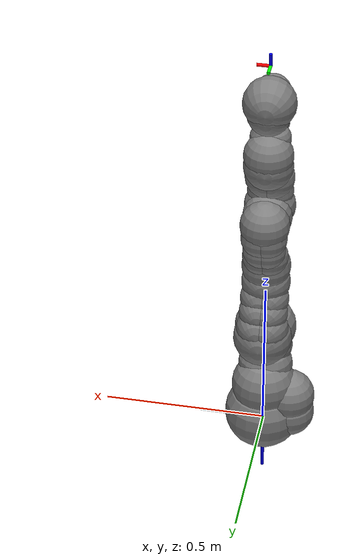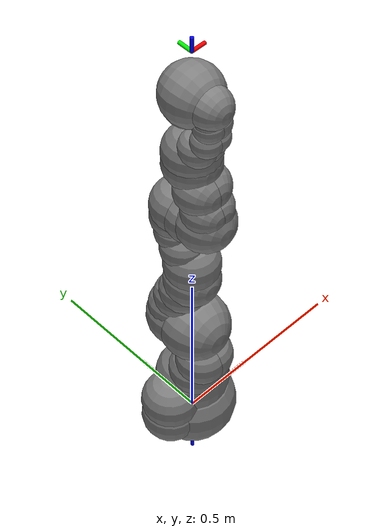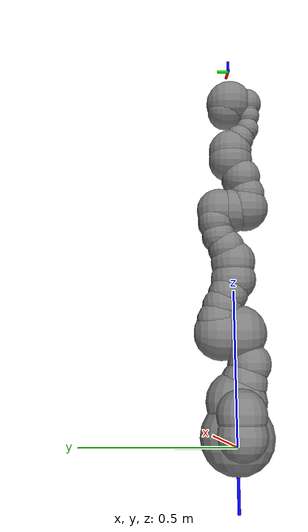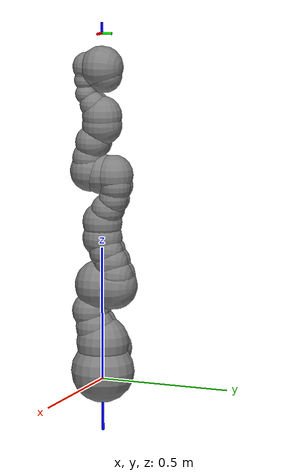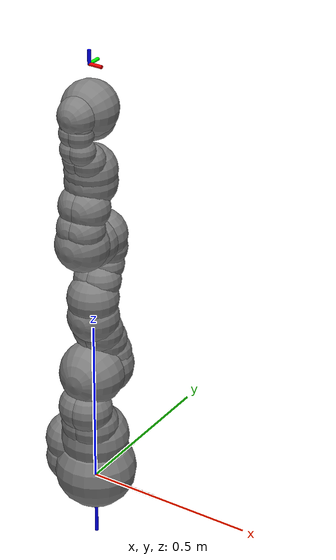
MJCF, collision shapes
<mujoco model="iiwa14">
    <option timestep="0.001"  tolerance="1e-10" solver="Newton" jacobian="dense" cone="pyramidal" gravity="0 0 -9.81">
        <flag contact="enable" energy="enable"/>
    </option>

    <compiler angle="radian" meshdir="meshes/iiwa14/visual/" />
    <size njmax="500" nconmax="100" />
    <option integrator="implicitfast"/>
    <default>
    <default class="iiwa">
        <material specular="0.5" shininess="0.25"/>
        <joint axis="0 0 1"/>
        <general gaintype="fixed" biastype="affine" gainprm="3000" biasprm="0 -3000 -300"/>
        <default class="joint1">
        <joint range="-2.96706 2.96706"/>
        <general ctrlrange="-2.96706 2.96706"/>
        <default class="joint2">
            <joint range="-2.0944 2.0944"/>
            <general ctrlrange="-2.0944 2.0944"/>
        </default>
        </default>
        <default class="joint3">
        <joint range="-3.05433 3.05433"/>
        <general ctrlrange="-3.05433 3.05433"/>
        </default>
        <default class="visual">
        <geom type="mesh" contype="0" conaffinity="0" group="2" material="gray"/>
        </default>
        <default class="collision">
        <geom group="3"/>
        </default>
        <site size="0.001" rgba="1 0 0 1" group="4"/>
    </default>
    </default>
    <asset>
        <material class="iiwa" name="gray" rgba="0.4 0.4 0.4 1"/>
        <material class="iiwa" name="light_gray" rgba="0.6 0.6 0.6 1"/>
        <material class="iiwa" name="black" rgba="0 0 0 1"/>
        <material class="iiwa" name="orange" rgba="1 0.423529 0.0392157 1"/>

        <mesh name="link_0_c" file="link_0.obj"/>
        <mesh name="link_1_c" file="link_1.obj"/>
        <mesh name="link_2_orange" file="link_2_orange.obj"/>
        <mesh name="link_2_grey" file="link_2_grey.obj"/>
        <mesh name="link_3_c" file="link_3.obj"/>
        <mesh name="band" file="band.obj"/>
        <mesh name="kuka" file="kuka.obj"/>
        <mesh name="link_4_orange" file="link_4_orange.obj"/>
        <mesh name="link_4_grey" file="link_4_grey.obj"/>
        <mesh name="link_5_c" file="link_5.obj"/>
        <mesh name="link_6_orange" file="link_6_orange.obj"/>
        <mesh name="link_6_grey" file="link_6_grey.obj"/>
        <mesh name="link_7_c" file="link_7.obj"/>

        <mesh name="link_0" file="link_0.stl" />
        <mesh name="link_1" file="link_1.stl" />
        <mesh name="link_2" file="link_2.stl" />
        <mesh name="link_3" file="link_3.stl" />
        <mesh name="link_4" file="link_4.stl" />
        <mesh name="link_5" file="link_5.stl" />
        <mesh name="link_6" file="link_6.stl" />
        <mesh name="link_7" file="link_7.stl" />
    </asset>
    <worldbody>
        <body name="base">
        <!-- color frame -->
        <geom type="cylinder" size="0.005 0.1" rgba="1 0 0 1" pos="0.1 0 0" euler="0 -1.57  0" />
        <geom type="cylinder" size="0.005 0.1" rgba="0 1 0 1" pos="0 0.1 0" euler="-1.57 0 0" />
        <geom type="cylinder" size="0.005 0.2" rgba="0 0 1 1" pos="0 0 0" euler="0 0 0" />
        <inertial pos="-0.1 0 0.07"  mass="5" diaginertia="0.05 0.06 0.03"/>
        <geom class="visual" mesh="link_0_c"/>
        <geom class="collision" size="0.12" pos="0 0 0.03"/>
        <geom class="collision" size="0.08" pos="-0.08 0 0.103"/>
        <geom class="collision" size="0.08" pos="-0.08 0 0.04"/>
        <geom class="collision" size="0.1" pos="0 0 0.14"/>
        <body name="link1" pos="0 0 0.1575">
            <inertial pos="0 -0.03 0.12" mass="4" diaginertia="0.1 0.09 0.02"/>
            <joint name="joint1" pos="0 0 0" axis="0 0 1" range="-2.96706 2.96706" actuatorfrcrange="-300 300" damping="0.5"/>
            <!-- add -->
            <geom class="visual" mesh="link_1_c"/>
            <geom class="collision" size="0.08" pos="0 0 -0.0005"/>
            <geom class="collision" size="0.075" pos="0.01 -0.025 0.0425"/>
            <geom class="collision" size="0.075" pos="-0.01 -0.025 0.0425"/>
            <geom class="collision" size="0.07" pos="0.01 -0.045 0.1025"/>
            <geom class="collision" size="0.07" pos="-0.01 -0.045 0.1025"/>
            <body name="link2" pos="0 0 0.2025" quat="0 0 0.707107 0.707107">
            <inertial pos="0.0003 0.059 0.042" quat="0.707107 0.707107 0 0" mass="4" diaginertia="0.05 0.044 0.018"/>
            <joint name="joint2" pos="0 0 0" axis="0 0 1" range="-2.0944 2.0944" actuatorfrcrange="-300 300" damping="0.5"/>
            <!-- add -->
            <geom class="visual" material="orange" mesh="link_2_orange"/>
            <geom class="visual" mesh="link_2_grey"/>
            <geom class="collision" size="0.095" pos="0 0 -0.01"/>
            <geom class="collision" size="0.09" pos="0 0 0.045"/>
            <geom class="collision" size="0.07" pos="-0.01 0.04 0.054"/>
            <geom class="collision" size="0.065" pos="-0.01 0.09 0.04"/>
            <geom class="collision" size="0.065" pos="-0.01 0.13 0.02"/>
            <geom class="collision" size="0.07" pos="0.01 0.04 0.054"/>
            <geom class="collision" size="0.065" pos="0.01 0.09 0.04"/>
            <geom class="collision" size="0.065" pos="0.01 0.13 0.02"/>
            <geom class="collision" size="0.075" pos="0 0.18 0"/>
            <body name="link3" pos="0 0.2045 0" quat="0 0 0.707107 0.707107">
                <inertial pos="0 0.03 0.13" mass="3" diaginertia="0.08 0.075 0.01"/>
                <joint name="joint3" pos="0 0 0" axis="0 0 1" range="-2.96706 2.96706" actuatorfrcrange="-300 300" damping="0.5"/>
                <!-- add -->
                <geom class="visual" mesh="link_3_c"/>
                <geom class="visual" material="light_gray" mesh="band"/>
                <geom class="visual" material="black" mesh="kuka"/>
                <geom class="collision" size="0.075" pos="0 0 0.0355"/>
                <geom class="collision" size="0.06" pos="0.01 0.023 0.0855"/>
                <geom class="collision" size="0.055" pos="0.01 0.048 0.1255"/>
                <geom class="collision" size="0.06" pos="0.01 0.056 0.1755"/>
                <geom class="collision" size="0.06" pos="-0.01 0.023 0.0855"/>
                <geom class="collision" size="0.055" pos="-0.01 0.048 0.1255"/>
                <geom class="collision" size="0.06" pos="-0.01 0.056 0.1755"/>
                <geom class="collision" size="0.075" pos="0 0.045 0.2155"/>
                <geom class="collision" size="0.075" pos="0 0 0.2155"/>
                <body name="link4" pos="0 0 0.2155" quat="0.707107 0.707107 0 0">
                <inertial pos="0 0.067 0.034" quat="0.707107 0.707107 0 0" mass="2.7" diaginertia="0.03 0.029 0.01"/>
                <joint name="joint4" pos="0 0 0" axis="0 0 1" range="-2.0944 2.0944" actuatorfrcrange="-300 300" damping="0.5"/>
                <!-- add -->
                <geom class="visual" material="orange" mesh="link_4_orange"/>
                <geom class="visual" mesh="link_4_grey"/>
                <geom class="collision" size="0.078" pos="0 0.01 0.046"/>
                <geom class="collision" size="0.06" pos="0.01 0.06 0.052"/>
                <geom class="collision" size="0.065" pos="0.01 0.12 0.034"/>
                <geom class="collision" size="0.06" pos="-0.01 0.06 0.052"/>
                <geom class="collision" size="0.065" pos="-0.01 0.12 0.034"/>
                <geom class="collision" size="0.075" pos="0 0.184 0"/>
                <body name="link5" pos="0 0.1845 0" quat="0 0 0.707107 0.707107">
                    <inertial pos="0.0001 0.021 0.076" mass="1.7" diaginertia="0.02 0.018 0.005"/>
                    <joint name="joint5" pos="0 0 0" axis="0 0 1" range="-2.96706 2.96706" actuatorfrcrange="-300 300" damping="0.5"/>
                    <!-- add -->
                    <geom class="visual" mesh="link_5_c"/>
                    <geom class="visual" material="light_gray" mesh="band"/>
                    <geom class="visual" material="black" mesh="kuka"/>
                    <geom class="collision" size="0.075" pos="0 0 0.0335"/>
                    <geom class="collision" size="0.05" pos="-0.012 0.031 0.0755"/>
                    <geom class="collision" size="0.05" pos="0.012 0.031 0.0755"/>
                    <geom class="collision" size="0.04" pos="-0.012 0.06 0.1155"/>
                    <geom class="collision" size="0.04" pos="0.012 0.06 0.1155"/>
                    <geom class="collision" size="0.04" pos="-0.01 0.065 0.1655"/>
                    <geom class="collision" size="0.04" pos="0.01 0.065 0.1655"/>
                    <geom class="collision" size="0.035" pos="-0.012 0.065 0.1855"/>
                    <geom class="collision" size="0.035" pos="0.012 0.065 0.1855"/>
                    <body name="link6" pos="0 0 0.2155" quat="0.707107 0.707107 0 0">
                    <inertial pos="0 0.0006 0.0004" quat="0.707107 0.707107 0 0" mass="1.8" diaginertia="0.005 0.0047 0.0036"/>
                    <joint name="joint6" pos="0 0 0" axis="0 0 1" range="-2.0944 2.0944" actuatorfrcrange="-300 300" damping="0.5"/>
                    <!-- add -->
                    <geom class="visual" material="orange" mesh="link_6_orange"/>
                    <geom class="visual" mesh="link_6_grey"/>
                    <geom class="collision" size="0.055" pos="0 0 -0.059"/>
                    <geom class="collision" size="0.065" pos="0 -0.03 0.011"/>
                    <geom class="collision" size="0.08"/>
                    <body name="link7" pos="0 0.081 0" quat="0 0 0.707107 0.707107">
                        <inertial pos="0 0 0.02" mass="0.3" diaginertia="0.001 0.001 0.001"/>
                        <joint name="joint7" pos="0 0 0" axis="0 0 1" range="-3.05433 3.05433" actuatorfrcrange="-300 300" damping="0.5"/>
                        <!-- add -->
                        <geom class="visual" mesh="link_7_c"/>
                        <site pos="0 0 0.045" name="attachment_site" />
                        <!-- color frame -->
                        <geom type="cylinder" size="0.005 0.02" rgba="1 0 0 1" pos="0.02 0 0.045" euler="0 -1.57  0" />
                        <geom type="cylinder" size="0.005 0.02" rgba="0 1 0 1" pos="0 0.02 0.045" euler="-1.57 0 0" />
                        <geom type="cylinder" size="0.005 0.02" rgba="0 0 1 1" pos="0 0 0.065" euler="0 0 0" />
                    </body>
                    </body>
                </body>
                </body>
            </body>
            </body>
        </body>
        </body>
    </worldbody>
    <contact>
        <exclude body1="base" body2="link1"/>
        <exclude body1="base" body2="link2"/>
        <exclude body1="base" body2="link3"/>
        <exclude body1="link1" body2="link3"/>
        <exclude body1="link3" body2="link5"/>
        <exclude body1="link4" body2="link7"/>
        <exclude body1="link5" body2="link7"/>
    </contact>
    <actuator>
        <motor name="actuator1" joint="joint1" gear="1" ctrllimited="true" ctrlrange="-176 176"/>
        <motor name="actuator2" joint="joint2" gear="1" ctrllimited="true" ctrlrange="-176 176"/>
        <motor name="actuator3" joint="joint3" gear="1" ctrllimited="true" ctrlrange="-110 110"/>
        <motor name="actuator4" joint="joint4" gear="1" ctrllimited="true" ctrlrange="-110 110"/>
        <motor name="actuator5" joint="joint5" gear="1" ctrllimited="true" ctrlrange="-110 110"/>
        <motor name="actuator6" joint="joint6" gear="1" ctrllimited="true" ctrlrange="-40 40"/>
        <motor name="actuator7" joint="joint7" gear="1" ctrllimited="true" ctrlrange="-40 40"/>
    </actuator>
    <keyframe>
        <key name="home" qpos="0 0.785398 0 -1.5708 0 0 0"/>
    </keyframe>
</mujoco>
